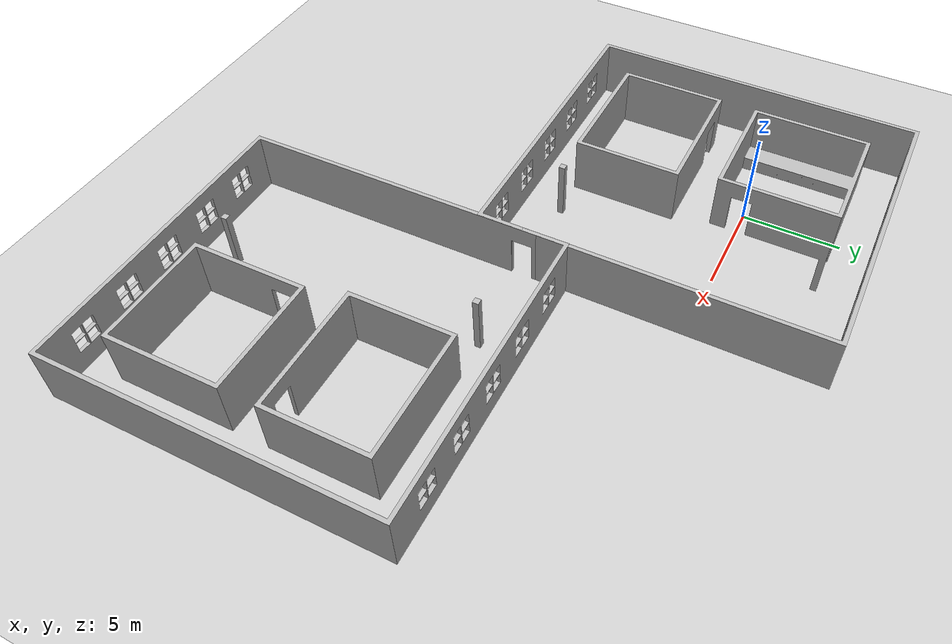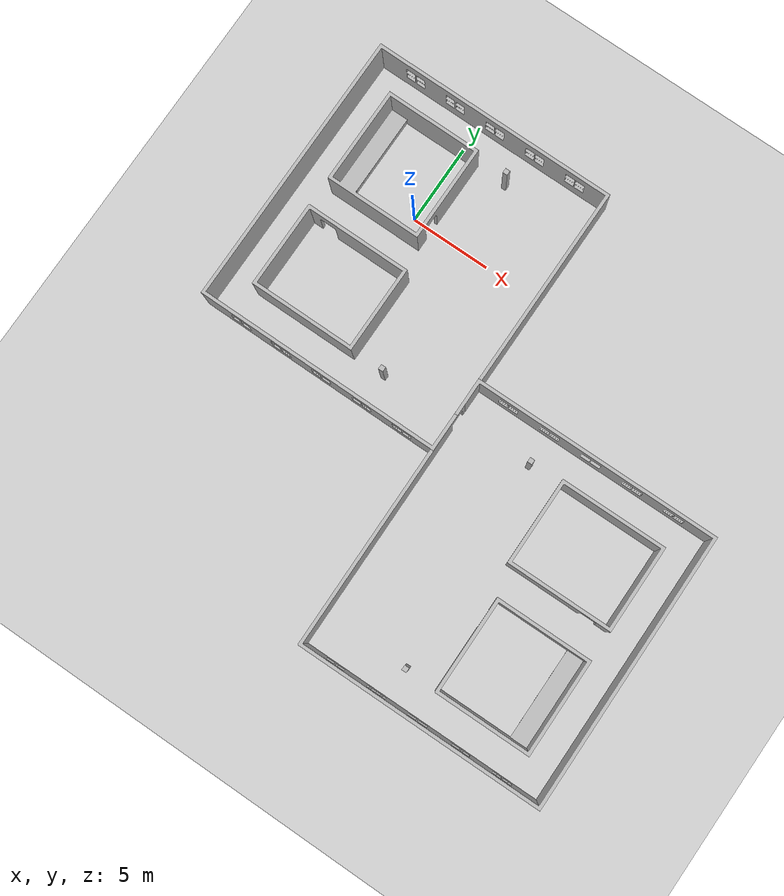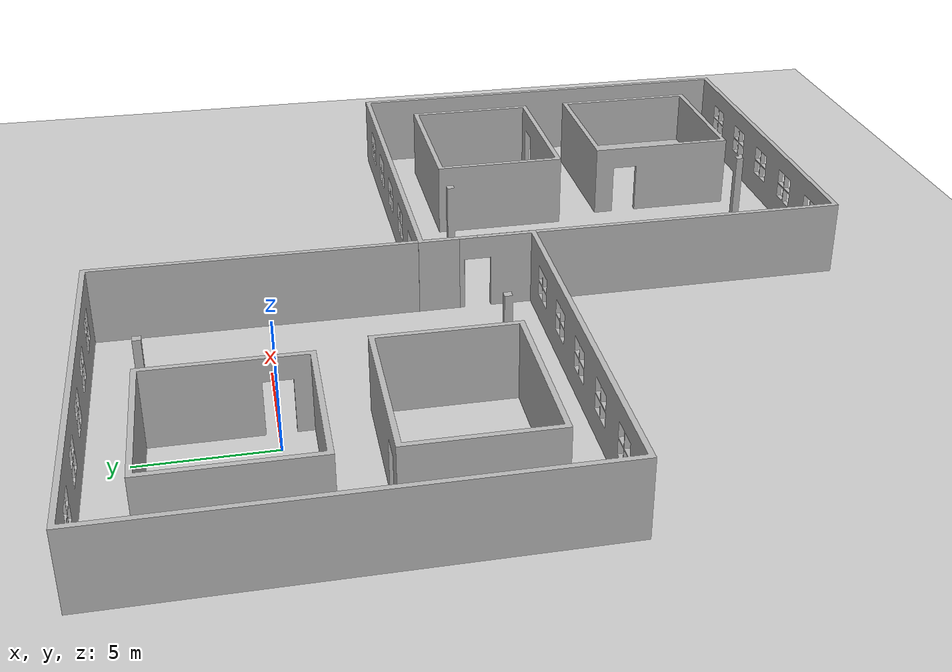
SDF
<sdf version="1.7">
 <world name="default">
  <light name="sun" type="directional">
   <pose>0 0 10 0 -0 0</pose>
   <diffuse>0.8 0.8 0.8 1</diffuse>
   <specular>0.2 0.2 0.2 1</specular>
   <attenuation>
    <range>1000</range>
    <constant>0.9</constant>
    <linear>0.01</linear>
    <quadratic>0.001</quadratic>
   </attenuation>
   <direction>-0.5 0.1 -0.9</direction>
   <spot><inner_angle>0</inner_angle><outer_angle>0</outer_angle><falloff>0</falloff></spot>
  </light>
  <model name="ground_plane">
   <static>1</static>
   <link name="link">
    <collision name="collision">
     <geometry><plane><normal>0 0 1</normal><size>100 100</size></plane></geometry>
     <surface>
      <contact><collide_bitmask>65535</collide_bitmask></contact>
      <friction><ode><mu>100</mu><mu2>50</mu2></ode></friction>
     </surface>
    </collision>
    <visual name="visual">
     <cast_shadows>0</cast_shadows>
     <geometry><plane><normal>0 0 1</normal><size>100 100</size></plane></geometry>
     <material>
      <script><uri>file://media/materials/scripts/gazebo.material</uri><name>Gazebo/Grey</name></script>
     </material>
    </visual>
   </link>
  </model>
  <gravity>0 0 -9.8</gravity>
  <magnetic_field>6e-06 2.3e-05 -4.2e-05</magnetic_field>
  <atmosphere type="adiabatic"/>
  <physics type="ode">
   <max_step_size>0.001</max_step_size>
   <real_time_factor>1</real_time_factor>
   <real_time_update_rate>1000</real_time_update_rate>
  </physics>
  <scene><ambient>0.4 0.4 0.4 1</ambient><background>0.7 0.7 0.7 1</background><shadows>1</shadows></scene>
  <spherical_coordinates>
   <surface_model>EARTH_WGS84</surface_model>
   <latitude_deg>0</latitude_deg>
   <longitude_deg>0</longitude_deg>
   <elevation>0</elevation>
   <heading_deg>0</heading_deg>
  </spherical_coordinates>
  <model name="test_zone">
   <link name="link">
    <inertial>
     <mass>15</mass>
     <inertia><ixx>0</ixx><ixy>0</ixy><ixz>0</ixz><iyy>0</iyy><iyz>0</iyz><izz>0.1</izz></inertia>
    </inertial>
    <collision name="collision">
     <pose>-8.12 8.8 0 1.57 -0 0</pose>
     <geometry><mesh><uri>model://test_zone/meshes/building.dae</uri></mesh></geometry>
    </collision>
    <visual name="visual">
     <pose>-8.12 8.8 0 1.57 -0 0</pose>
     <geometry><mesh><uri>model://test_zone/meshes/building.dae</uri></mesh></geometry>
    </visual>
   </link>
   <static>1</static>
   <pose>1.41253 -2.28359 0 0 -0 0</pose>
  </model>
  <model name="test_zone_0">
   <link name="link">
    <inertial>
     <mass>15</mass>
     <inertia><ixx>0</ixx><ixy>0</ixy><ixz>0</ixz><iyy>0</iyy><iyz>0</iyz><izz>0.1</izz></inertia>
    </inertial>
    <collision name="collision">
     <pose>-8.12 8.8 0 1.57 -0 0</pose>
     <geometry><mesh><uri>model://test_zone/meshes/building.dae</uri></mesh></geometry>
    </collision>
    <visual name="visual">
     <pose>-8.12 8.8 0 1.57 -0 0</pose>
     <geometry><mesh><uri>model://test_zone/meshes/building.dae</uri></mesh></geometry>
    </visual>
   </link>
   <static>1</static>
   <pose>15.9085 -14.455 0 0 0 -3.13385</pose>
  </model>
 </world>
</sdf>
